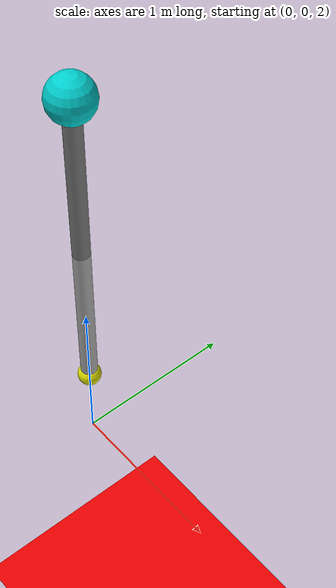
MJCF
<mujoco>
<compiler angle="radian"/>
	<visual>
		<headlight ambient="0.7 0.7 0.7" />
	</visual>
	<option timestep="0.001" integrator="implicitfast" gravity="0 0 -9.81">
	<!-- https://github.com/deepmind/mujoco/issues/941 -->
		<flag sensornoise="enable" energy="enable" contact="enable" />
	</option>

	<worldbody>
		<geom type="plane" size="100 1 0.1" rgba="0.9 0 0 1" />

		<!-- 0  rotation about y -->
		<body pos="0 0 4.5" euler="0 0 0">
			<joint name="x" type="slide" pos="0 0 -0.5"  axis="1 0 0" />
			<joint name="z" type="slide"  axis="0 0 1" />
				<geom name="torso" type="sphere" size="0.13" pos="0 0 0" rgba="0 .8 .8 1" mass="5"/>

				<body name ="thigh">
				<joint name="hip" type="hinge" axis = "0 1 0" />
					<geom name="upper" type="cylinder" size="0.05 0.5" pos="0 0 -0.5" rgba="0.5 .5 0.5 1" mass=".5"/>

					<body name ="leg" pos="0 0 -1">
						<joint name="knee" type="hinge" axis = "0 1 0" pos="0 0 0"/>
							<geom name="lower" type="cylinder" size="0.05 0.5" pos="0 0 -0.5" rgba="0.7 0.7 .7 1" mass=".5"/>

							<body pos="0 0 -1." name="foot">
								<geom name="toe" type="sphere" size="0.07"  rgba="0.9 0.9 0 1" mass="0.1"/>
							</body>
					</body>
				</body>

		</body>

	</worldbody>

	<actuator>
		<motor joint="hip" name="Hip Torque"/>
		<motor joint="knee" name="Knee Torque"/>
	</actuator>

	<sensor>
		<jointpos joint="hip" noise="0.01"/>
		<jointpos joint="knee" noise="0.01"/>
		<jointvel joint="hip" noise="0.05"/>
		<jointvel joint="knee" noise="0.05"/>
	</sensor>

</mujoco>
